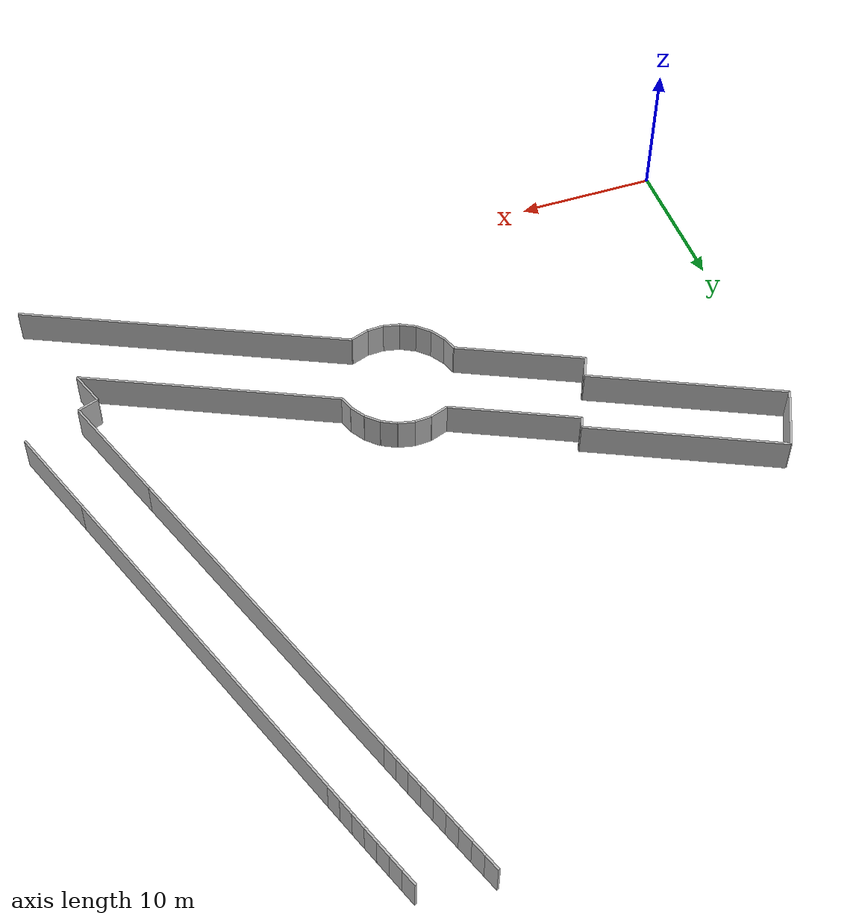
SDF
<?xml version="1.0" ?>
<sdf version="1.6">
  <model name="sps_4433">
    <pose frame="">0 0 0 0 -0 0</pose>
    <static>1</static>
    <self_collide>0</self_collide>
    <allow_auto_disable>0</allow_auto_disable>
    <link name="Wall255">
      <kinematic>0</kinematic>
      <gravity>1</gravity>
      <self_collide>0</self_collide>
      <collision name="collision">
        <geometry>
          <box>
            <size>6.85096 0.15 2.5</size>
          </box>
        </geometry>
        <pose frame="">0 0 0 0 -0 0</pose>
      </collision>
      <visual name="visual">
        <geometry>
          <box>
            <size>6.85096 0.15 2.5</size>
          </box>
        </geometry>
        <pose frame="">0 0 0 0 -0 0</pose>
        <cast_shadows>1</cast_shadows>
        <transparency>0.0</transparency>
      </visual>
      <pose frame="">48.5984 14.6685 1.25 0 -0 1.91498</pose>
    </link>
    <link name="Wall256">
      <kinematic>0</kinematic>
      <gravity>1</gravity>
      <self_collide>0</self_collide>
      <collision name="collision">
        <geometry>
          <box>
            <size>25.6927 0.15 2.5</size>
          </box>
        </geometry>
        <pose frame="">0 0 0 0 -0 0</pose>
      </collision>
      <visual name="visual">
        <geometry>
          <box>
            <size>25.6927 0.15 2.5</size>
          </box>
        </geometry>
        <pose frame="">0 0 0 0 -0 0</pose>
        <cast_shadows>1</cast_shadows>
        <transparency>0.0</transparency>
      </visual>
      <pose frame="">43.1078 29.986 1.25 0 -0 1.91498</pose>
    </link>
    <link name="Wall478">
      <kinematic>0</kinematic>
      <gravity>1</gravity>
      <self_collide>0</self_collide>
      <collision name="collision">
        <geometry>
          <box>
            <size>1.50045 0.15 2.5</size>
          </box>
        </geometry>
        <pose frame="">0 0 0 0 -0 0</pose>
      </collision>
      <visual name="visual">
        <geometry>
          <box>
            <size>1.50045 0.15 2.5</size>
          </box>
        </geometry>
        <pose frame="">0 0 0 0 -0 0</pose>
        <cast_shadows>1</cast_shadows>
        <transparency>0.0</transparency>
      </visual>
      <pose frame="">45.1512 9.79387 1.25 0 0 -2.79733</pose>
    </link>
    <link name="Wall573">
      <kinematic>0</kinematic>
      <gravity>1</gravity>
      <self_collide>0</self_collide>
      <collision name="collision">
        <geometry>
          <box>
            <size>2.49952 0.15 2.5</size>
          </box>
        </geometry>
        <pose frame="">0 0 0 0 -0 0</pose>
      </collision>
      <visual name="visual">
        <geometry>
          <box>
            <size>2.49952 0.15 2.5</size>
          </box>
        </geometry>
        <pose frame="">0 0 0 0 -0 0</pose>
        <cast_shadows>1</cast_shadows>
        <transparency>0.0</transparency>
      </visual>
      <pose frame="">44.8669 8.36427 1.25 0 0 -1.22644</pose>
    </link>
    <link name="Wall574">
      <kinematic>0</kinematic>
      <gravity>1</gravity>
      <self_collide>0</self_collide>
      <collision name="collision">
        <geometry>
          <box>
            <size>24.2062 0.15 2.5</size>
          </box>
        </geometry>
        <pose frame="">0 0 0 0 -0 0</pose>
      </collision>
      <visual name="visual">
        <geometry>
          <box>
            <size>24.2062 0.15 2.5</size>
          </box>
        </geometry>
        <pose frame="">0 0 0 0 -0 0</pose>
        <cast_shadows>1</cast_shadows>
        <transparency>0.0</transparency>
      </visual>
      <pose frame="">38.9609 29.2863 1.25 0 0 -1.2266</pose>
    </link>
    <link name="Wall575">
      <kinematic>0</kinematic>
      <gravity>1</gravity>
      <self_collide>0</self_collide>
      <collision name="collision">
        <geometry>
          <box>
            <size>8.33487 0.15 2.5</size>
          </box>
        </geometry>
        <pose frame="">0 0 0 0 -0 0</pose>
      </collision>
      <visual name="visual">
        <geometry>
          <box>
            <size>8.33487 0.15 2.5</size>
          </box>
        </geometry>
        <pose frame="">0 0 0 0 -0 0</pose>
        <cast_shadows>1</cast_shadows>
        <transparency>0.0</transparency>
      </visual>
      <pose frame="">44.4512 13.9701 1.25 0 0 -1.2266</pose>
    </link>
    <link name="Wall673">
      <kinematic>0</kinematic>
      <gravity>1</gravity>
      <self_collide>0</self_collide>
      <collision name="collision">
        <geometry>
          <box>
            <size>23.2666 0.15 2.5</size>
          </box>
        </geometry>
        <pose frame="">0 0 0 0 -0 0</pose>
      </collision>
      <visual name="visual">
        <geometry>
          <box>
            <size>23.2666 0.15 2.5</size>
          </box>
        </geometry>
        <pose frame="">0 0 0 0 -0 0</pose>
        <cast_shadows>1</cast_shadows>
        <transparency>0.0</transparency>
      </visual>
      <pose frame="">37.3008 5.0963 1.25 0 -0 2.70031</pose>
    </link>
    <link name="Wall674">
      <kinematic>0</kinematic>
      <gravity>1</gravity>
      <self_collide>0</self_collide>
      <collision name="collision">
        <geometry>
          <box>
            <size>1.35791 0.15 2.5</size>
          </box>
        </geometry>
        <pose frame="">0 0 0 0 -0 0</pose>
      </collision>
      <visual name="visual">
        <geometry>
          <box>
            <size>1.35791 0.15 2.5</size>
          </box>
        </geometry>
        <pose frame="">0 0 0 0 -0 0</pose>
        <cast_shadows>1</cast_shadows>
        <transparency>0.0</transparency>
      </visual>
      <pose frame="">26.1386 9.84779 1.25 0 0 -2.81612</pose>
    </link>
    <link name="Wall675">
      <kinematic>0</kinematic>
      <gravity>1</gravity>
      <self_collide>0</self_collide>
      <collision name="collision">
        <geometry>
          <box>
            <size>1.14829 0.15 2.5</size>
          </box>
        </geometry>
        <pose frame="">0 0 0 0 -0 0</pose>
      </collision>
      <visual name="visual">
        <geometry>
          <box>
            <size>1.14829 0.15 2.5</size>
          </box>
        </geometry>
        <pose frame="">0 0 0 0 -0 0</pose>
        <cast_shadows>1</cast_shadows>
        <transparency>0.0</transparency>
      </visual>
      <pose frame="">24.9217 9.60588 1.25 0 0 -3.09837</pose>
    </link>
    <link name="Wall676">
      <kinematic>0</kinematic>
      <gravity>1</gravity>
      <self_collide>0</self_collide>
      <collision name="collision">
        <geometry>
          <box>
            <size>1.14803 0.15 2.5</size>
          </box>
        </geometry>
        <pose frame="">0 0 0 0 -0 0</pose>
      </collision>
      <visual name="visual">
        <geometry>
          <box>
            <size>1.14803 0.15 2.5</size>
          </box>
        </geometry>
        <pose frame="">0 0 0 0 -0 0</pose>
        <cast_shadows>1</cast_shadows>
        <transparency>0.0</transparency>
      </visual>
      <pose frame="">23.7877 9.70537 1.25 0 -0 2.92332</pose>
    </link>
    <link name="Wall677">
      <kinematic>0</kinematic>
      <gravity>1</gravity>
      <self_collide>0</self_collide>
      <collision name="collision">
        <geometry>
          <box>
            <size>1.14817 0.15 2.5</size>
          </box>
        </geometry>
        <pose frame="">0 0 0 0 -0 0</pose>
      </collision>
      <visual name="visual">
        <geometry>
          <box>
            <size>1.14817 0.15 2.5</size>
          </box>
        </geometry>
        <pose frame="">0 0 0 0 -0 0</pose>
        <cast_shadows>1</cast_shadows>
        <transparency>0.0</transparency>
      </visual>
      <pose frame="">22.7182 10.095 1.25 0 -0 2.66116</pose>
    </link>
    <link name="Wall678">
      <kinematic>0</kinematic>
      <gravity>1</gravity>
      <self_collide>0</self_collide>
      <collision name="collision">
        <geometry>
          <box>
            <size>1.14819 0.15 2.5</size>
          </box>
        </geometry>
        <pose frame="">0 0 0 0 -0 0</pose>
      </collision>
      <visual name="visual">
        <geometry>
          <box>
            <size>1.14819 0.15 2.5</size>
          </box>
        </geometry>
        <pose frame="">0 0 0 0 -0 0</pose>
        <cast_shadows>1</cast_shadows>
        <transparency>0.0</transparency>
      </visual>
      <pose frame="">21.7858 10.7482 1.25 0 -0 2.3997</pose>
    </link>
    <link name="Wall679">
      <kinematic>0</kinematic>
      <gravity>1</gravity>
      <self_collide>0</self_collide>
      <collision name="collision">
        <geometry>
          <box>
            <size>1.14827 0.15 2.5</size>
          </box>
        </geometry>
        <pose frame="">0 0 0 0 -0 0</pose>
      </collision>
      <visual name="visual">
        <geometry>
          <box>
            <size>1.14827 0.15 2.5</size>
          </box>
        </geometry>
        <pose frame="">0 0 0 0 -0 0</pose>
        <cast_shadows>1</cast_shadows>
        <transparency>0.0</transparency>
      </visual>
      <pose frame="">21.0543 11.6204 1.25 0 -0 2.13782</pose>
    </link>
    <link name="Wall680">
      <kinematic>0</kinematic>
      <gravity>1</gravity>
      <self_collide>0</self_collide>
      <collision name="collision">
        <geometry>
          <box>
            <size>1.01506 0.15 2.5</size>
          </box>
        </geometry>
        <pose frame="">0 0 0 0 -0 0</pose>
      </collision>
      <visual name="visual">
        <geometry>
          <box>
            <size>1.01506 0.15 2.5</size>
          </box>
        </geometry>
        <pose frame="">0 0 0 0 -0 0</pose>
        <cast_shadows>1</cast_shadows>
        <transparency>0.0</transparency>
      </visual>
      <pose frame="">20.5852 12.5861 1.25 0 -0 1.89298</pose>
    </link>
    <link name="Wall681">
      <kinematic>0</kinematic>
      <gravity>1</gravity>
      <self_collide>0</self_collide>
      <collision name="collision">
        <geometry>
          <box>
            <size>8.98615 0.15 2.5</size>
          </box>
        </geometry>
        <pose frame="">0 0 0 0 -0 0</pose>
      </collision>
      <visual name="visual">
        <geometry>
          <box>
            <size>8.98615 0.15 2.5</size>
          </box>
        </geometry>
        <pose frame="">0 0 0 0 -0 0</pose>
        <cast_shadows>1</cast_shadows>
        <transparency>0.0</transparency>
      </visual>
      <pose frame="">16.3616 14.986 1.25 0 -0 2.70043</pose>
    </link>
    <link name="Wall682">
      <kinematic>0</kinematic>
      <gravity>1</gravity>
      <self_collide>0</self_collide>
      <collision name="collision">
        <geometry>
          <box>
            <size>1.59989 0.15 2.5</size>
          </box>
        </geometry>
        <pose frame="">0 0 0 0 -0 0</pose>
      </collision>
      <visual name="visual">
        <geometry>
          <box>
            <size>1.59989 0.15 2.5</size>
          </box>
        </geometry>
        <pose frame="">0 0 0 0 -0 0</pose>
        <cast_shadows>1</cast_shadows>
        <transparency>0.0</transparency>
      </visual>
      <pose frame="">12.6406 17.6277 1.25 0 -0 1.12919</pose>
    </link>
    <link name="Wall683">
      <kinematic>0</kinematic>
      <gravity>1</gravity>
      <self_collide>0</self_collide>
      <collision name="collision">
        <geometry>
          <box>
            <size>13.7004 0.15 2.5</size>
          </box>
        </geometry>
        <pose frame="">0 0 0 0 -0 0</pose>
      </collision>
      <visual name="visual">
        <geometry>
          <box>
            <size>13.7004 0.15 2.5</size>
          </box>
        </geometry>
        <pose frame="">0 0 0 0 -0 0</pose>
        <cast_shadows>1</cast_shadows>
        <transparency>0.0</transparency>
      </visual>
      <pose frame="">6.78826 21.2762 1.25 0 -0 2.70038</pose>
    </link>
    <link name="Wall684">
      <kinematic>0</kinematic>
      <gravity>1</gravity>
      <self_collide>0</self_collide>
      <collision name="collision">
        <geometry>
          <box>
            <size>4.49972 0.15 2.5</size>
          </box>
        </geometry>
        <pose frame="">0 0 0 0 -0 0</pose>
      </collision>
      <visual name="visual">
        <geometry>
          <box>
            <size>4.49972 0.15 2.5</size>
          </box>
        </geometry>
        <pose frame="">0 0 0 0 -0 0</pose>
        <cast_shadows>1</cast_shadows>
        <transparency>0.0</transparency>
      </visual>
      <pose frame="">1.55486 26.2359 1.25 0 -0 1.12958</pose>
    </link>
    <link name="Wall685">
      <kinematic>0</kinematic>
      <gravity>1</gravity>
      <self_collide>0</self_collide>
      <collision name="collision">
        <geometry>
          <box>
            <size>13.7002 0.15 2.5</size>
          </box>
        </geometry>
        <pose frame="">0 0 0 0 -0 0</pose>
      </collision>
      <visual name="visual">
        <geometry>
          <box>
            <size>13.7002 0.15 2.5</size>
          </box>
        </geometry>
        <pose frame="">0 0 0 0 -0 0</pose>
        <cast_shadows>1</cast_shadows>
        <transparency>0.0</transparency>
      </visual>
      <pose frame="">8.70974 25.3451 1.25 0 0 -0.441208</pose>
    </link>
    <link name="Wall686">
      <kinematic>0</kinematic>
      <gravity>1</gravity>
      <self_collide>0</self_collide>
      <collision name="collision">
        <geometry>
          <box>
            <size>0.799504 0.15 2.5</size>
          </box>
        </geometry>
        <pose frame="">0 0 0 0 -0 0</pose>
      </collision>
      <visual name="visual">
        <geometry>
          <box>
            <size>0.799504 0.15 2.5</size>
          </box>
        </geometry>
        <pose frame="">0 0 0 0 -0 0</pose>
        <cast_shadows>1</cast_shadows>
        <transparency>0.0</transparency>
      </visual>
      <pose frame="">14.7331 22.0584 1.25 0 0 -2.01194</pose>
    </link>
    <link name="Wall687">
      <kinematic>0</kinematic>
      <gravity>1</gravity>
      <self_collide>0</self_collide>
      <collision name="collision">
        <geometry>
          <box>
            <size>8.98305 0.15 2.5</size>
          </box>
        </geometry>
        <pose frame="">0 0 0 0 -0 0</pose>
      </collision>
      <visual name="visual">
        <geometry>
          <box>
            <size>8.98305 0.15 2.5</size>
          </box>
        </geometry>
        <pose frame="">0 0 0 0 -0 0</pose>
        <cast_shadows>1</cast_shadows>
        <transparency>0.0</transparency>
      </visual>
      <pose frame="">18.6238 19.7787 1.25 0 0 -0.441254</pose>
    </link>
    <link name="Wall688">
      <kinematic>0</kinematic>
      <gravity>1</gravity>
      <self_collide>0</self_collide>
      <collision name="collision">
        <geometry>
          <box>
            <size>1.35633 0.15 2.5</size>
          </box>
        </geometry>
        <pose frame="">0 0 0 0 -0 0</pose>
      </collision>
      <visual name="visual">
        <geometry>
          <box>
            <size>1.35633 0.15 2.5</size>
          </box>
        </geometry>
        <pose frame="">0 0 0 0 -0 0</pose>
        <cast_shadows>1</cast_shadows>
        <transparency>0.0</transparency>
      </visual>
      <pose frame="">23.3277 18.0773 1.25 0 -0 0.325394</pose>
    </link>
    <link name="Wall689">
      <kinematic>0</kinematic>
      <gravity>1</gravity>
      <self_collide>0</self_collide>
      <collision name="collision">
        <geometry>
          <box>
            <size>1.14811 0.15 2.5</size>
          </box>
        </geometry>
        <pose frame="">0 0 0 0 -0 0</pose>
      </collision>
      <visual name="visual">
        <geometry>
          <box>
            <size>1.14811 0.15 2.5</size>
          </box>
        </geometry>
        <pose frame="">0 0 0 0 -0 0</pose>
        <cast_shadows>1</cast_shadows>
        <transparency>0.0</transparency>
      </visual>
      <pose frame="">24.5438 18.319 1.25 0 -0 0.0433932</pose>
    </link>
    <link name="Wall690">
      <kinematic>0</kinematic>
      <gravity>1</gravity>
      <self_collide>0</self_collide>
      <collision name="collision">
        <geometry>
          <box>
            <size>1.1483 0.15 2.5</size>
          </box>
        </geometry>
        <pose frame="">0 0 0 0 -0 0</pose>
      </collision>
      <visual name="visual">
        <geometry>
          <box>
            <size>1.1483 0.15 2.5</size>
          </box>
        </geometry>
        <pose frame="">0 0 0 0 -0 0</pose>
        <cast_shadows>1</cast_shadows>
        <transparency>0.0</transparency>
      </visual>
      <pose frame="">25.6778 18.2194 1.25 0 0 -0.2186</pose>
    </link>
    <link name="Wall691">
      <kinematic>0</kinematic>
      <gravity>1</gravity>
      <self_collide>0</self_collide>
      <collision name="collision">
        <geometry>
          <box>
            <size>1.14827 0.15 2.5</size>
          </box>
        </geometry>
        <pose frame="">0 0 0 0 -0 0</pose>
      </collision>
      <visual name="visual">
        <geometry>
          <box>
            <size>1.14827 0.15 2.5</size>
          </box>
        </geometry>
        <pose frame="">0 0 0 0 -0 0</pose>
        <cast_shadows>1</cast_shadows>
        <transparency>0.0</transparency>
      </visual>
      <pose frame="">26.7475 17.8297 1.25 0 0 -0.480146</pose>
    </link>
    <link name="Wall692">
      <kinematic>0</kinematic>
      <gravity>1</gravity>
      <self_collide>0</self_collide>
      <collision name="collision">
        <geometry>
          <box>
            <size>1.14814 0.15 2.5</size>
          </box>
        </geometry>
        <pose frame="">0 0 0 0 -0 0</pose>
      </collision>
      <visual name="visual">
        <geometry>
          <box>
            <size>1.14814 0.15 2.5</size>
          </box>
        </geometry>
        <pose frame="">0 0 0 0 -0 0</pose>
        <cast_shadows>1</cast_shadows>
        <transparency>0.0</transparency>
      </visual>
      <pose frame="">27.6798 17.1765 1.25 0 0 -0.742156</pose>
    </link>
    <link name="Wall693">
      <kinematic>0</kinematic>
      <gravity>1</gravity>
      <self_collide>0</self_collide>
      <collision name="collision">
        <geometry>
          <box>
            <size>1.14791 0.15 2.5</size>
          </box>
        </geometry>
        <pose frame="">0 0 0 0 -0 0</pose>
      </collision>
      <visual name="visual">
        <geometry>
          <box>
            <size>1.14791 0.15 2.5</size>
          </box>
        </geometry>
        <pose frame="">0 0 0 0 -0 0</pose>
        <cast_shadows>1</cast_shadows>
        <transparency>0.0</transparency>
      </visual>
      <pose frame="">28.4111 16.3043 1.25 0 0 -1.00396</pose>
    </link>
    <link name="Wall694">
      <kinematic>0</kinematic>
      <gravity>1</gravity>
      <self_collide>0</self_collide>
      <collision name="collision">
        <geometry>
          <box>
            <size>1.01193 0.15 2.5</size>
          </box>
        </geometry>
        <pose frame="">0 0 0 0 -0 0</pose>
      </collision>
      <visual name="visual">
        <geometry>
          <box>
            <size>1.01193 0.15 2.5</size>
          </box>
        </geometry>
        <pose frame="">0 0 0 0 -0 0</pose>
        <cast_shadows>1</cast_shadows>
        <transparency>0.0</transparency>
      </visual>
      <pose frame="">28.879 15.34 1.25 0 0 -1.24968</pose>
    </link>
    <link name="Wall695">
      <kinematic>0</kinematic>
      <gravity>1</gravity>
      <self_collide>0</self_collide>
      <collision name="collision">
        <geometry>
          <box>
            <size>17.9702 0.15 2.5</size>
          </box>
        </geometry>
        <pose frame="">0 0 0 0 -0 0</pose>
      </collision>
      <visual name="visual">
        <geometry>
          <box>
            <size>17.9702 0.15 2.5</size>
          </box>
        </geometry>
        <pose frame="">0 0 0 0 -0 0</pose>
        <cast_shadows>1</cast_shadows>
        <transparency>0.0</transparency>
      </visual>
      <pose frame="">37.1637 11.0239 1.25 0 0 -0.441094</pose>
    </link>
    <link name="Wall3461">
      <kinematic>0</kinematic>
      <gravity>1</gravity>
      <self_collide>0</self_collide>
      <collision name="collision">
        <geometry>
          <box>
            <size>1.12137 0.15 2.5</size>
          </box>
        </geometry>
        <pose frame="">0 0 0 0 -0 0</pose>
      </collision>
      <visual name="visual">
        <geometry>
          <box>
            <size>1.12137 0.15 2.5</size>
          </box>
        </geometry>
        <pose frame="">0 0 0 0 -0 0</pose>
        <cast_shadows>1</cast_shadows>
        <transparency>0.0</transparency>
      </visual>
      <pose frame="">34.6871 41.2071 1.25 0 -0 1.91611</pose>
    </link>
    <link name="Wall3462">
      <kinematic>0</kinematic>
      <gravity>1</gravity>
      <self_collide>0</self_collide>
      <collision name="collision">
        <geometry>
          <box>
            <size>1.12127 0.15 2.5</size>
          </box>
        </geometry>
        <pose frame="">0 0 0 0 -0 0</pose>
      </collision>
      <visual name="visual">
        <geometry>
          <box>
            <size>1.12127 0.15 2.5</size>
          </box>
        </geometry>
        <pose frame="">0 0 0 0 -0 0</pose>
        <cast_shadows>1</cast_shadows>
        <transparency>0.0</transparency>
      </visual>
      <pose frame="">34.3069 42.262 1.25 0 -0 1.9173</pose>
    </link>
    <link name="Wall3463">
      <kinematic>0</kinematic>
      <gravity>1</gravity>
      <self_collide>0</self_collide>
      <collision name="collision">
        <geometry>
          <box>
            <size>1.12128 0.15 2.5</size>
          </box>
        </geometry>
        <pose frame="">0 0 0 0 -0 0</pose>
      </collision>
      <visual name="visual">
        <geometry>
          <box>
            <size>1.12128 0.15 2.5</size>
          </box>
        </geometry>
        <pose frame="">0 0 0 0 -0 0</pose>
        <cast_shadows>1</cast_shadows>
        <transparency>0.0</transparency>
      </visual>
      <pose frame="">33.9255 43.3164 1.25 0 -0 1.91846</pose>
    </link>
    <link name="Wall3464">
      <kinematic>0</kinematic>
      <gravity>1</gravity>
      <self_collide>0</self_collide>
      <collision name="collision">
        <geometry>
          <box>
            <size>1.12153 0.15 2.5</size>
          </box>
        </geometry>
        <pose frame="">0 0 0 0 -0 0</pose>
      </collision>
      <visual name="visual">
        <geometry>
          <box>
            <size>1.12153 0.15 2.5</size>
          </box>
        </geometry>
        <pose frame="">0 0 0 0 -0 0</pose>
        <cast_shadows>1</cast_shadows>
        <transparency>0.0</transparency>
      </visual>
      <pose frame="">33.5427 44.3705 1.25 0 -0 1.91971</pose>
    </link>
    <link name="Wall3465">
      <kinematic>0</kinematic>
      <gravity>1</gravity>
      <self_collide>0</self_collide>
      <collision name="collision">
        <geometry>
          <box>
            <size>1.12141 0.15 2.5</size>
          </box>
        </geometry>
        <pose frame="">0 0 0 0 -0 0</pose>
      </collision>
      <visual name="visual">
        <geometry>
          <box>
            <size>1.12141 0.15 2.5</size>
          </box>
        </geometry>
        <pose frame="">0 0 0 0 -0 0</pose>
        <cast_shadows>1</cast_shadows>
        <transparency>0.0</transparency>
      </visual>
      <pose frame="">33.1587 45.4242 1.25 0 -0 1.92085</pose>
    </link>
    <link name="Wall3466">
      <kinematic>0</kinematic>
      <gravity>1</gravity>
      <self_collide>0</self_collide>
      <collision name="collision">
        <geometry>
          <box>
            <size>1.12132 0.15 2.5</size>
          </box>
        </geometry>
        <pose frame="">0 0 0 0 -0 0</pose>
      </collision>
      <visual name="visual">
        <geometry>
          <box>
            <size>1.12132 0.15 2.5</size>
          </box>
        </geometry>
        <pose frame="">0 0 0 0 -0 0</pose>
        <cast_shadows>1</cast_shadows>
        <transparency>0.0</transparency>
      </visual>
      <pose frame="">32.7735 46.4773 1.25 0 -0 1.92221</pose>
    </link>
    <link name="Wall3467">
      <kinematic>0</kinematic>
      <gravity>1</gravity>
      <self_collide>0</self_collide>
      <collision name="collision">
        <geometry>
          <box>
            <size>1.12134 0.15 2.5</size>
          </box>
        </geometry>
        <pose frame="">0 0 0 0 -0 0</pose>
      </collision>
      <visual name="visual">
        <geometry>
          <box>
            <size>1.12134 0.15 2.5</size>
          </box>
        </geometry>
        <pose frame="">0 0 0 0 -0 0</pose>
        <cast_shadows>1</cast_shadows>
        <transparency>0.0</transparency>
      </visual>
      <pose frame="">32.387 47.5299 1.25 0 -0 1.92319</pose>
    </link>
    <link name="Wall3468">
      <kinematic>0</kinematic>
      <gravity>1</gravity>
      <self_collide>0</self_collide>
      <collision name="collision">
        <geometry>
          <box>
            <size>1.12148 0.15 2.5</size>
          </box>
        </geometry>
        <pose frame="">0 0 0 0 -0 0</pose>
      </collision>
      <visual name="visual">
        <geometry>
          <box>
            <size>1.12148 0.15 2.5</size>
          </box>
        </geometry>
        <pose frame="">0 0 0 0 -0 0</pose>
        <cast_shadows>1</cast_shadows>
        <transparency>0.0</transparency>
      </visual>
      <pose frame="">31.9991 48.5821 1.25 0 -0 1.92465</pose>
    </link>
    <link name="Wall3469">
      <kinematic>0</kinematic>
      <gravity>1</gravity>
      <self_collide>0</self_collide>
      <collision name="collision">
        <geometry>
          <box>
            <size>1.12142 0.15 2.5</size>
          </box>
        </geometry>
        <pose frame="">0 0 0 0 -0 0</pose>
      </collision>
      <visual name="visual">
        <geometry>
          <box>
            <size>1.12142 0.15 2.5</size>
          </box>
        </geometry>
        <pose frame="">0 0 0 0 -0 0</pose>
        <cast_shadows>1</cast_shadows>
        <transparency>0.0</transparency>
      </visual>
      <pose frame="">31.61 49.6339 1.25 0 -0 1.9256</pose>
    </link>
    <link name="Wall6395">
      <kinematic>0</kinematic>
      <gravity>1</gravity>
      <self_collide>0</self_collide>
      <collision name="collision">
        <geometry>
          <box>
            <size>1.12627 0.15 2.5</size>
          </box>
        </geometry>
        <pose frame="">0 0 0 0 -0 0</pose>
      </collision>
      <visual name="visual">
        <geometry>
          <box>
            <size>1.12627 0.15 2.5</size>
          </box>
        </geometry>
        <pose frame="">0 0 0 0 -0 0</pose>
        <cast_shadows>1</cast_shadows>
        <transparency>0.0</transparency>
      </visual>
      <pose frame="">38.5825 42.6088 1.25 0 -0 1.91604</pose>
    </link>
    <link name="Wall6396">
      <kinematic>0</kinematic>
      <gravity>1</gravity>
      <self_collide>0</self_collide>
      <collision name="collision">
        <geometry>
          <box>
            <size>1.1262 0.15 2.5</size>
          </box>
        </geometry>
        <pose frame="">0 0 0 0 -0 0</pose>
      </collision>
      <visual name="visual">
        <geometry>
          <box>
            <size>1.1262 0.15 2.5</size>
          </box>
        </geometry>
        <pose frame="">0 0 0 0 -0 0</pose>
        <cast_shadows>1</cast_shadows>
        <transparency>0.0</transparency>
      </visual>
      <pose frame="">38.2006 43.6683 1.25 0 -0 1.91745</pose>
    </link>
    <link name="Wall6397">
      <kinematic>0</kinematic>
      <gravity>1</gravity>
      <self_collide>0</self_collide>
      <collision name="collision">
        <geometry>
          <box>
            <size>1.12625 0.15 2.5</size>
          </box>
        </geometry>
        <pose frame="">0 0 0 0 -0 0</pose>
      </collision>
      <visual name="visual">
        <geometry>
          <box>
            <size>1.12625 0.15 2.5</size>
          </box>
        </geometry>
        <pose frame="">0 0 0 0 -0 0</pose>
        <cast_shadows>1</cast_shadows>
        <transparency>0.0</transparency>
      </visual>
      <pose frame="">37.8173 44.7273 1.25 0 -0 1.9187</pose>
    </link>
    <link name="Wall6398">
      <kinematic>0</kinematic>
      <gravity>1</gravity>
      <self_collide>0</self_collide>
      <collision name="collision">
        <geometry>
          <box>
            <size>1.12626 0.15 2.5</size>
          </box>
        </geometry>
        <pose frame="">0 0 0 0 -0 0</pose>
      </collision>
      <visual name="visual">
        <geometry>
          <box>
            <size>1.12626 0.15 2.5</size>
          </box>
        </geometry>
        <pose frame="">0 0 0 0 -0 0</pose>
        <cast_shadows>1</cast_shadows>
        <transparency>0.0</transparency>
      </visual>
      <pose frame="">37.4328 45.7859 1.25 0 -0 1.91968</pose>
    </link>
    <link name="Wall6399">
      <kinematic>0</kinematic>
      <gravity>1</gravity>
      <self_collide>0</self_collide>
      <collision name="collision">
        <geometry>
          <box>
            <size>1.1264 0.15 2.5</size>
          </box>
        </geometry>
        <pose frame="">0 0 0 0 -0 0</pose>
      </collision>
      <visual name="visual">
        <geometry>
          <box>
            <size>1.1264 0.15 2.5</size>
          </box>
        </geometry>
        <pose frame="">0 0 0 0 -0 0</pose>
        <cast_shadows>1</cast_shadows>
        <transparency>0.0</transparency>
      </visual>
      <pose frame="">37.047 46.8441 1.25 0 -0 1.92096</pose>
    </link>
    <link name="Wall6400">
      <kinematic>0</kinematic>
      <gravity>1</gravity>
      <self_collide>0</self_collide>
      <collision name="collision">
        <geometry>
          <box>
            <size>1.12634 0.15 2.5</size>
          </box>
        </geometry>
        <pose frame="">0 0 0 0 -0 0</pose>
      </collision>
      <visual name="visual">
        <geometry>
          <box>
            <size>1.12634 0.15 2.5</size>
          </box>
        </geometry>
        <pose frame="">0 0 0 0 -0 0</pose>
        <cast_shadows>1</cast_shadows>
        <transparency>0.0</transparency>
      </visual>
      <pose frame="">36.6601 47.9019 1.25 0 -0 1.92208</pose>
    </link>
    <link name="Wall6401">
      <kinematic>0</kinematic>
      <gravity>1</gravity>
      <self_collide>0</self_collide>
      <collision name="collision">
        <geometry>
          <box>
            <size>1.12642 0.15 2.5</size>
          </box>
        </geometry>
        <pose frame="">0 0 0 0 -0 0</pose>
      </collision>
      <visual name="visual">
        <geometry>
          <box>
            <size>1.12642 0.15 2.5</size>
          </box>
        </geometry>
        <pose frame="">0 0 0 0 -0 0</pose>
        <cast_shadows>1</cast_shadows>
        <transparency>0.0</transparency>
      </visual>
      <pose frame="">36.2719 48.9593 1.25 0 -0 1.92321</pose>
    </link>
  </model>
</sdf>
